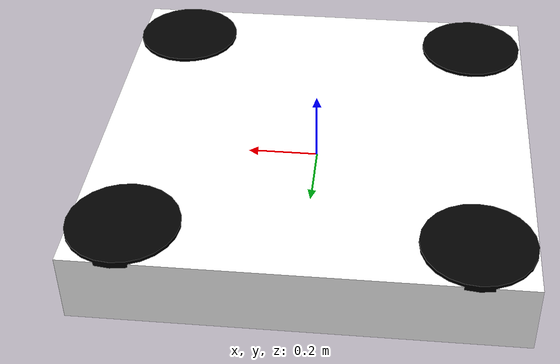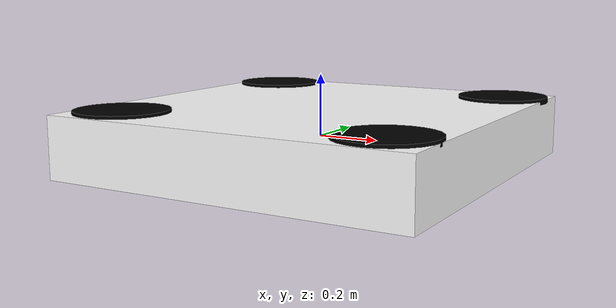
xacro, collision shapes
<?xml version="1.0"?>
<robot name="sim_drone" xmlns:xacro="http://www.ros.org/wiki/xacro">

    <!-- Include the robot and gazebo configurations -->
    <xacro:include filename="$(find sim_drone)/config/my_robot.urdf.xacro"/>

    <!-- Main properties can be defined here if needed -->
    <xacro:property name="mesh_scale" value="0.008" />
    <xacro:property name="propeller_mass" value="0.05" />
    <xacro:property name="base_mass" value="0.15" />

    <!-- Ensure correct collision shape -->
    <xacro:property name="collision_mesh" value="package://urdf/WholeDrone_collision.STL" />
</robot>

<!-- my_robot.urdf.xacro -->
<robot name="drone" xmlns:xacro="http://www.ros.org/wiki/xacro">

    <!-- Material Colors -->
    <material name="white"><color rgba="1 1 1 1" /></material>
    <material name="black"><color rgba="0 0 0 1" /></material>
    <material name="blue"><color rgba="0 0 1 1" /></material>
    <material name="grey"><color rgba="0.5 0.5 0.5 1" /></material>

    <!-- Base Link -->
    <link name="base_link">
        <visual>
            <geometry>
                <mesh filename="file://$(find sim_drone)/meshes/WholeDrone.STL" scale="0.008 0.008 0.008"/>
            </geometry>
            <origin xyz="0.56 -0.8275 -0.425" rpy="${pi/2} 0 ${pi}" />
            <material name="white" />
        </visual>
        <collision>
            <geometry>
                <box size="1.2 1.2 0.2" />
            </geometry>
            <origin xyz="0 0 0" rpy="0 0 0" />
        </collision>
        <inertial>
            <origin xyz="0 0 0" rpy="0 0 0" />
            <mass value="1.5"/>
            <inertia ixx="0.0201" ixy="0" ixz="0"
                    iyy="0.0293" iyz="0"
                    izz="0.0486"/>
        </inertial>
    </link>

    <!-- Propeller Macro and Links (unchanged) -->
    <xacro:macro name="propeller_link" params="prefix">
        <link name="${prefix}_propeller_link">
            <visual>
                <geometry>
                    <mesh filename="file://$(find sim_drone)/meshes/PropellerForRos.STL" scale="0.008 0.008 0.008"/>
                </geometry>
                <origin xyz="-0.269 0.3874 -0.2" rpy="${pi/2} 0 0" />
                <material name="black" />
            </visual>
            <collision>
                <geometry>
                    <cylinder radius="0.15" length="0.02"/>
                </geometry>
                <origin xyz="0 0 0" rpy="0 0 0" />
            </collision>
            <inertial>
                <origin xyz="0 0 0" rpy="0 0 0"/>
                <mass value="0.1"/>
                <inertia ixx="0.0001" ixy="0" ixz="0"
                        iyy="0.0001" iyz="0"
                        izz="0.0002"/>
            </inertial>
        </link>
    </xacro:macro>

    <!-- Propeller Links -->
    <xacro:propeller_link prefix="front_right" />
    <xacro:propeller_link prefix="front_left" />
    <xacro:propeller_link prefix="back_right" />
    <xacro:propeller_link prefix="back_left" />

    <!-- Joints (unchanged) -->
    <joint name="base_front_right_propeller_joint" type="continuous">
        <parent link="base_link" />
        <child link="front_right_propeller_link" />
        <origin xyz="-0.444 -0.444 0.1" rpy="0 0 0" />
        <axis xyz="0 0 1" />
        <dynamics damping="0.01" friction="0.01"/>
    </joint>

    <joint name="base_front_left_propeller_joint" type="continuous">
        <parent link="base_link" />
        <child link="front_left_propeller_link" />
        <origin xyz="0.451 -0.445 0.1" rpy="0 0 0" />
        <axis xyz="0 0 1" />
        <dynamics damping="0.01" friction="0.01"/>
    </joint>

    <joint name="base_back_right_propeller_joint" type="continuous">
        <parent link="base_link" />
        <child link="back_right_propeller_link" />
        <origin xyz="-0.4482 0.455 0.1" rpy="0 0 0" />
        <axis xyz="0 0 1" />
        <dynamics damping="0.01" friction="0.01"/>
    </joint>

    <joint name="base_back_left_propeller_joint" type="continuous">
        <parent link="base_link" />
        <child link="back_left_propeller_link" />
        <origin xyz="0.457 0.457 0.1" rpy="0 0 0" />
        <axis xyz="0 0 1" />
        <dynamics damping="0.01" friction="0.01"/>
    </joint>

<!-- IMU Link -->
<link name="imu_link">
    <visual>
        <geometry>
            <box size="0.02 0.02 0.02"/>
        </geometry>
        <material name="blue"/>
    </visual>
    <collision>
        <geometry>
            <box size="0.02 0.02 0.02"/>
        </geometry>
    </collision>
    <inertial>
        <mass value="0.01"/>
        <inertia ixx="0.0001" ixy="0" ixz="0"
                 iyy="0.0001" iyz="0"
                 izz="0.0001"/>
    </inertial>
</link>

<!-- IMU Joint -->
<joint name="imu_joint" type="fixed">
    <parent link="base_link"/>
    <child link="imu_link"/>
    <origin xyz="0 0 0" rpy="0 0 0"/>
</joint>

  <gazebo reference="imu_link">
    <gravity>true</gravity>
    <sensor name="imu_sensor" type="imu">
      <always_on>true</always_on>
      <update_rate>100</update_rate>
      <visualize>true</visualize>
    <topic>/imu/data</topic>
      <plugin filename="libgazebo_ros_imu_sensor.so" name="imu_plugin">
        <bodyName>imu_link</bodyName>
        <updateRateHZ>100.0</updateRateHZ>
        <gaussianNoise>0.01</gaussianNoise>
        <xyzOffset>0 0 0</xyzOffset>
        <rpyOffset>0 0 0</rpyOffset>
        <frameName>imu_link</frameName>
        <initialOrientationAsReference>false</initialOrientationAsReference>
      </plugin>
      <pose>0 0 0 0 0 0</pose>
    </sensor>
  </gazebo>

    <!-- Gazebo Colors -->
    <gazebo reference="base_link"><material>Gazebo/White</material></gazebo>
    <gazebo reference="front_right_propeller_link"><material>Gazebo/Black</material></gazebo>
    <gazebo reference="front_left_propeller_link"><material>Gazebo/Black</material></gazebo>
    <gazebo reference="back_right_propeller_link"><material>Gazebo/Black</material></gazebo>
    <gazebo reference="back_left_propeller_link"><material>Gazebo/Black</material></gazebo>
</robot>
